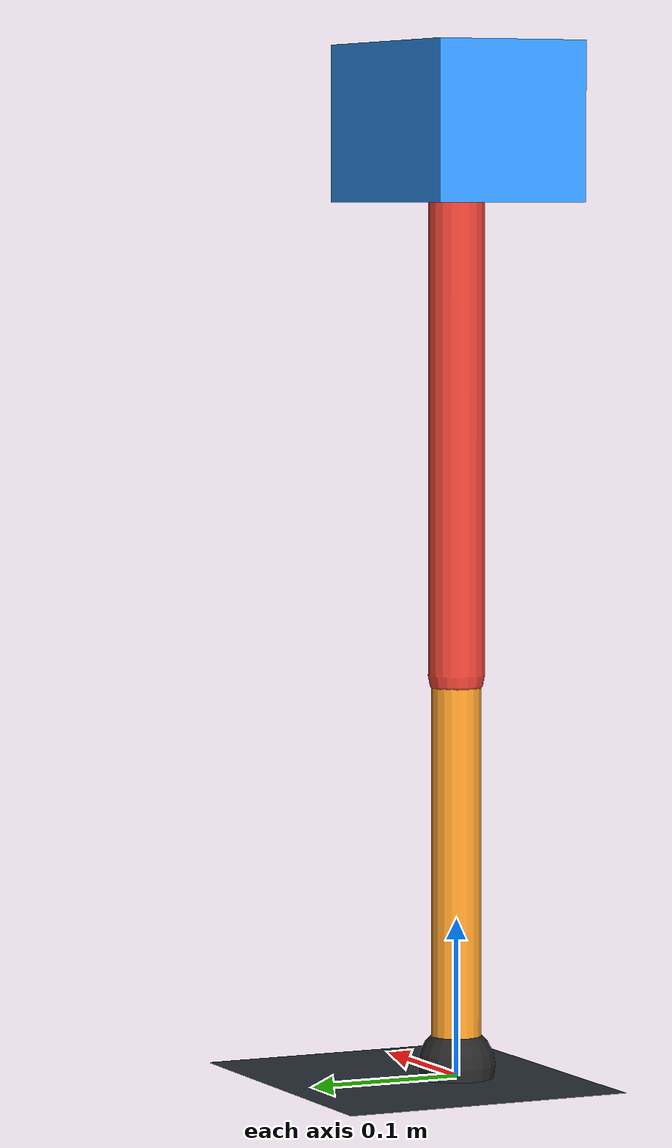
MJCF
<mujoco model="single_axis_two_bar">
  <compiler angle="radian" inertiafromgeom="true"/>
  <option timestep="0.001" integrator="implicitfast" gravity="0 0 -9.81"/>
  <default>
    <joint damping="0.08"/>
    <geom friction="1.2 0.01 0.0001" condim="3"/>
  </default>
  <worldbody>
    <geom name="floor" type="plane" size="5 5 0.1" rgba="0.18 0.22 0.25 1"/>
    <body name="carriage" pos="0 0 0.6035140219965814">
      <joint name="pole_slide" type="slide" axis="0 0 1"/>
      <geom name="payload" type="box" size="0.08 0.05 0.05" mass="2.443629783634075" rgba="0.2 0.6 1 1"/>
      <body name="thigh" pos="0 0 0">
        <joint name="hip" type="hinge" axis="0 1 0"/>
        <geom name="thigh_link" type="capsule" fromto="0 0 0 0 0 -0.3480128285198591" size="0.018" mass="0.24796373890420295" rgba="0.9 0.25 0.2 1"/>
        <body name="shank" pos="0 0 -0.3480128285198591">
          <joint name="knee" type="hinge" axis="0 1 0"/>
          <geom name="shank_link" type="capsule" fromto="0 0 0 0 0 -0.2483933797240392" size="0.016" mass="0.1769835652823053" rgba="0.95 0.6 0.15 1"/>
          <geom name="foot" type="sphere" pos="0 0 -0.2483933797240392" size="0.025" mass="0.03" rgba="0.15 0.15 0.15 1"/>
          <site name="toe" pos="0 0 -0.2483933797240392" size="0.008"/>
        </body>
      </body>
    </body>
  </worldbody>
  <actuator>
    <motor name="hip_motor" joint="hip" ctrlrange="-34.09263628920693 34.09263628920693"/>
    <motor name="knee_motor" joint="knee" ctrlrange="-104.75540548392473 104.75540548392473"/>
  </actuator>
</mujoco>
